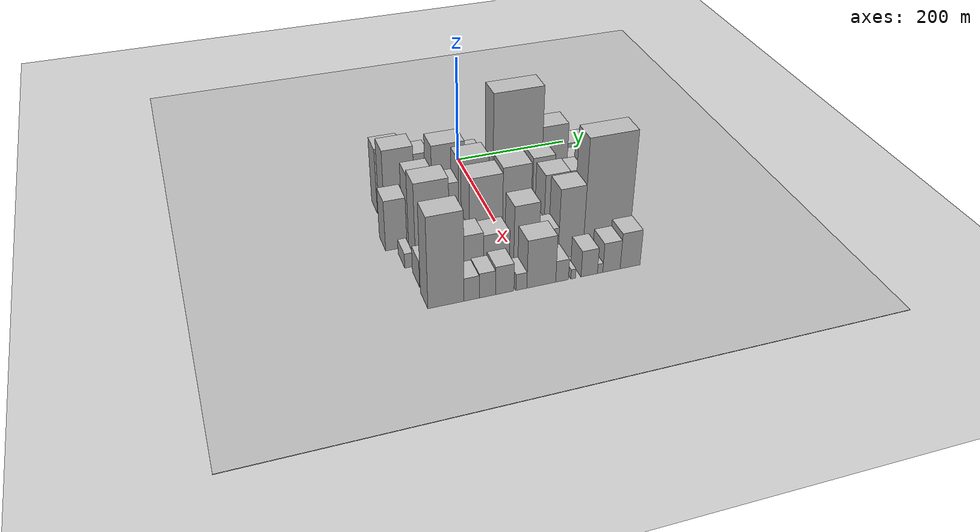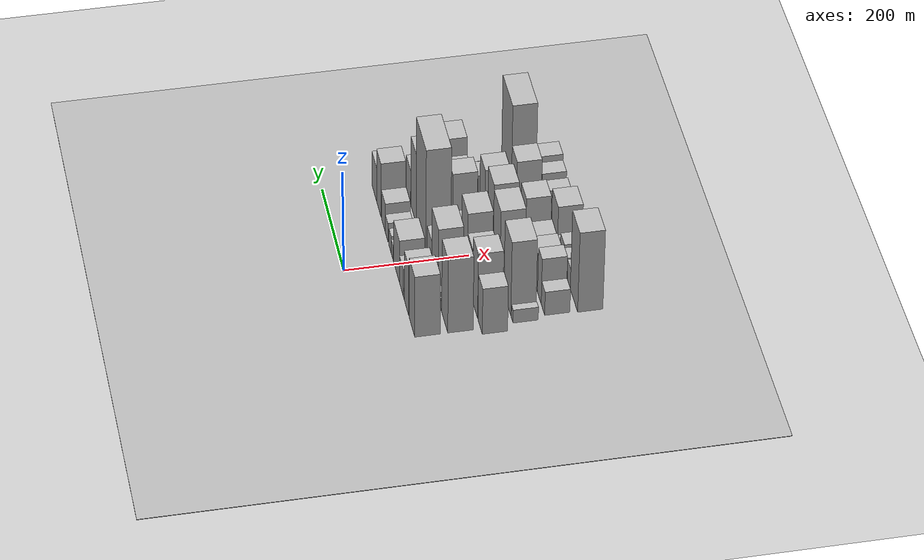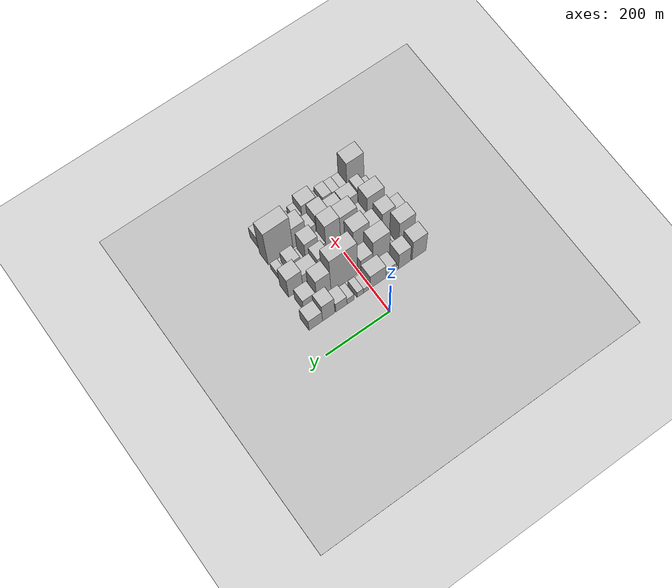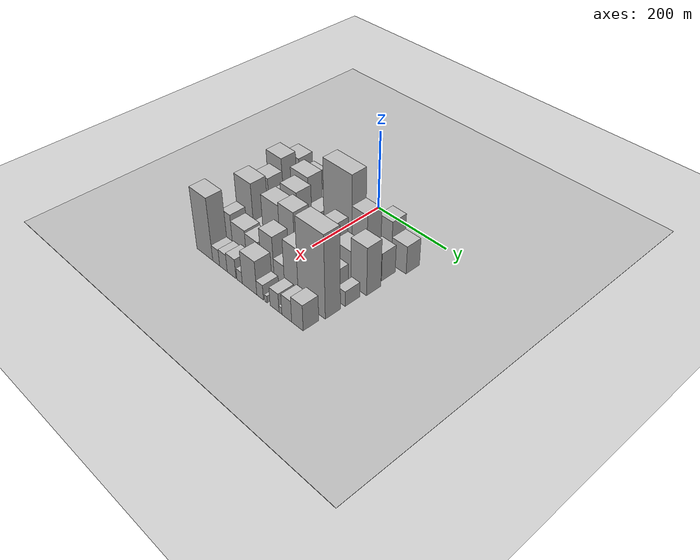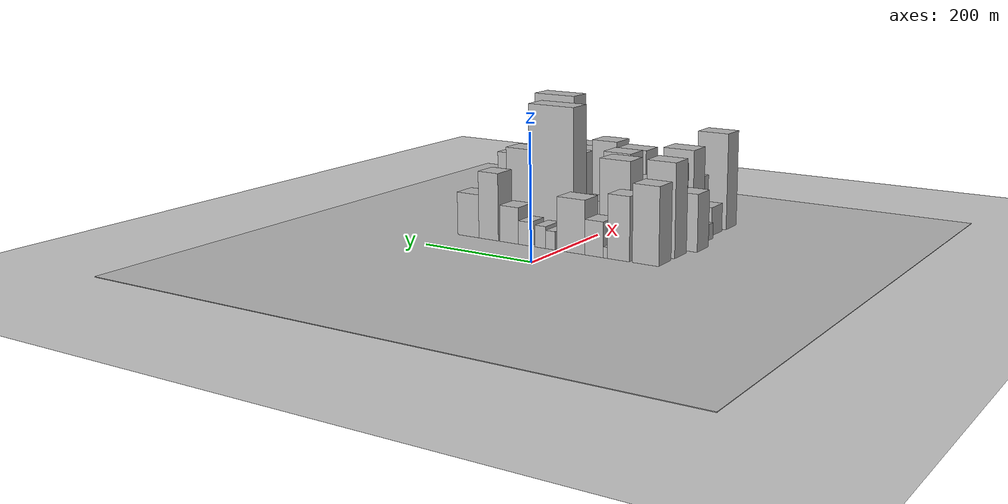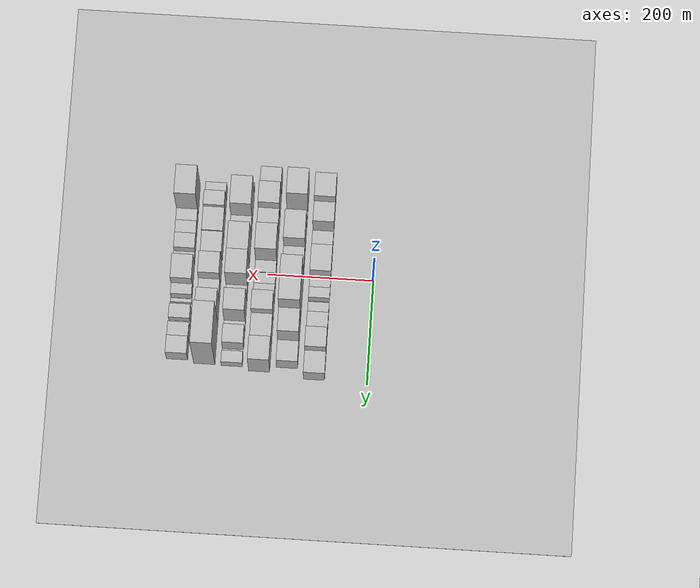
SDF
<sdf version="1.6">
 <world name="default">
  <include><name>ground_plane_1</name><uri>model://HANNAS_ground_plane</uri></include>
  <include>
   <name>ground_plane_2</name>
   <uri>model://HANNAS_ground_plane</uri>
   <pose>100 0 0  0 0 0</pose>
  </include>
  <model name="building_22">
   <static>1</static>
   <pose>100.0000 -152.9791 0 0.000000 0.000000 0.000000</pose>
   <link name="link">
    <pose>0 0 61.50 0 0 0</pose>
    <collision name="collision"><geometry><box><size>40.0000 45.4234 123.0000</size></box></geometry></collision>
    <visual name="visual">
     <cast_shadows>0</cast_shadows>
     <geometry><box><size>40.0000 45.4234 123.0000</size></box></geometry>
     <material>
      <script>
       <uri>model://HANNAS_wall/materials/scripts</uri>
       <uri>model://HANNAS_wall/materials/textures</uri>
       <name>vrc/HANNAS_wall</name>
      </script>
     </material>
    </visual>
   </link>
  </model>
  <model name="building_23">
   <static>1</static>
   <pose>100.0000 -106.0577 0 0.000000 0.000000 0.000000</pose>
   <link name="link">
    <pose>0 0 51.00 0 0 0</pose>
    <collision name="collision"><geometry><box><size>40.0000 38.4194 102.0000</size></box></geometry></collision>
    <visual name="visual">
     <cast_shadows>0</cast_shadows>
     <geometry><box><size>40.0000 38.4194 102.0000</size></box></geometry>
     <material>
      <script>
       <uri>model://HANNAS_wall/materials/scripts</uri>
       <uri>model://HANNAS_wall/materials/textures</uri>
       <name>vrc/HANNAS_wall</name>
      </script>
     </material>
    </visual>
   </link>
  </model>
  <model name="building_24">
   <static>1</static>
   <pose>100.0000 -83.0893 0 0.000000 0.000000 0.000000</pose>
   <link name="link">
    <pose>0 0 9.00 0 0 0</pose>
    <collision name="collision"><geometry><box><size>40.0000 7.5173 18.0000</size></box></geometry></collision>
    <visual name="visual">
     <cast_shadows>0</cast_shadows>
     <geometry><box><size>40.0000 7.5173 18.0000</size></box></geometry>
     <material>
      <script>
       <uri>model://HANNAS_wall/materials/scripts</uri>
       <uri>model://HANNAS_wall/materials/textures</uri>
       <name>vrc/HANNAS_wall</name>
      </script>
     </material>
    </visual>
   </link>
  </model>
  <model name="building_25">
   <static>1</static>
   <pose>100.0000 -62.7961 0 0.000000 0.000000 0.000000</pose>
   <link name="link">
    <pose>0 0 28.50 0 0 0</pose>
    <collision name="collision"><geometry><box><size>40.0000 33.0693 57.0000</size></box></geometry></collision>
    <visual name="visual">
     <cast_shadows>0</cast_shadows>
     <geometry><box><size>40.0000 33.0693 57.0000</size></box></geometry>
     <material>
      <script>
       <uri>model://HANNAS_wall/materials/scripts</uri>
       <uri>model://HANNAS_wall/materials/textures</uri>
       <name>vrc/HANNAS_wall</name>
      </script>
     </material>
    </visual>
   </link>
  </model>
  <model name="building_26">
   <static>1</static>
   <pose>100.0000 -21.0965 0 0.000000 0.000000 0.000000</pose>
   <link name="link">
    <pose>0 0 43.50 0 0 0</pose>
    <collision name="collision"><geometry><box><size>40.0000 50.3299 87.0000</size></box></geometry></collision>
    <visual name="visual">
     <cast_shadows>0</cast_shadows>
     <geometry><box><size>40.0000 50.3299 87.0000</size></box></geometry>
     <material>
      <script>
       <uri>model://HANNAS_wall/materials/scripts</uri>
       <uri>model://HANNAS_wall/materials/textures</uri>
       <name>vrc/HANNAS_wall</name>
      </script>
     </material>
    </visual>
   </link>
  </model>
  <model name="building_27">
   <static>1</static>
   <pose>100.0000 16.5725 0 0.000000 0.000000 0.000000</pose>
   <link name="link">
    <pose>0 0 15.00 0 0 0</pose>
    <collision name="collision"><geometry><box><size>40.0000 17.0081 30.0000</size></box></geometry></collision>
    <visual name="visual">
     <cast_shadows>0</cast_shadows>
     <geometry><box><size>40.0000 17.0081 30.0000</size></box></geometry>
     <material>
      <script>
       <uri>model://HANNAS_wall/materials/scripts</uri>
       <uri>model://HANNAS_wall/materials/textures</uri>
       <name>vrc/HANNAS_wall</name>
      </script>
     </material>
    </visual>
   </link>
  </model>
  <model name="building_28">
   <static>1</static>
   <pose>100.0000 35.2071 0 0.000000 0.000000 0.000000</pose>
   <link name="link">
    <pose>0 0 18.00 0 0 0</pose>
    <collision name="collision"><geometry><box><size>40.0000 20.2609 36.0000</size></box></geometry></collision>
    <visual name="visual">
     <cast_shadows>0</cast_shadows>
     <geometry><box><size>40.0000 20.2609 36.0000</size></box></geometry>
     <material>
      <script>
       <uri>model://HANNAS_wall/materials/scripts</uri>
       <uri>model://HANNAS_wall/materials/textures</uri>
       <name>vrc/HANNAS_wall</name>
      </script>
     </material>
    </visual>
   </link>
  </model>
  <model name="building_29">
   <static>1</static>
   <pose>100.0000 65.7200 0 0.000000 0.000000 0.000000</pose>
   <link name="link">
    <pose>0 0 19.50 0 0 0</pose>
    <collision name="collision"><geometry><box><size>40.0000 22.7649 39.0000</size></box></geometry></collision>
    <visual name="visual">
     <cast_shadows>0</cast_shadows>
     <geometry><box><size>40.0000 22.7649 39.0000</size></box></geometry>
     <material>
      <script>
       <uri>model://HANNAS_wall/materials/scripts</uri>
       <uri>model://HANNAS_wall/materials/textures</uri>
       <name>vrc/HANNAS_wall</name>
      </script>
     </material>
    </visual>
   </link>
  </model>
  <model name="building_30">
   <static>1</static>
   <pose>100.0000 94.8843 0 0.000000 0.000000 0.000000</pose>
   <link name="link">
    <pose>0 0 30.00 0 0 0</pose>
    <collision name="collision"><geometry><box><size>40.0000 35.5636 60.0000</size></box></geometry></collision>
    <visual name="visual">
     <cast_shadows>0</cast_shadows>
     <geometry><box><size>40.0000 35.5636 60.0000</size></box></geometry>
     <material>
      <script>
       <uri>model://HANNAS_wall/materials/scripts</uri>
       <uri>model://HANNAS_wall/materials/textures</uri>
       <name>vrc/HANNAS_wall</name>
      </script>
     </material>
    </visual>
   </link>
  </model>
  <model name="building_31">
   <static>1</static>
   <pose>100.0000 134.7887 0 0.000000 0.000000 0.000000</pose>
   <link name="link">
    <pose>0 0 55.50 0 0 0</pose>
    <collision name="collision"><geometry><box><size>40.0000 38.2454 111.0000</size></box></geometry></collision>
    <visual name="visual">
     <cast_shadows>0</cast_shadows>
     <geometry><box><size>40.0000 38.2454 111.0000</size></box></geometry>
     <material>
      <script>
       <uri>model://HANNAS_wall/materials/scripts</uri>
       <uri>model://HANNAS_wall/materials/textures</uri>
       <name>vrc/HANNAS_wall</name>
      </script>
     </material>
    </visual>
   </link>
  </model>
  <model name="building_32">
   <static>1</static>
   <pose>100.0000 175.0350 0 0.000000 0.000000 0.000000</pose>
   <link name="link">
    <pose>0 0 36.00 0 0 0</pose>
    <collision name="collision"><geometry><box><size>40.0000 42.2471 72.0000</size></box></geometry></collision>
    <visual name="visual">
     <cast_shadows>0</cast_shadows>
     <geometry><box><size>40.0000 42.2471 72.0000</size></box></geometry>
     <material>
      <script>
       <uri>model://HANNAS_wall/materials/scripts</uri>
       <uri>model://HANNAS_wall/materials/textures</uri>
       <name>vrc/HANNAS_wall</name>
      </script>
     </material>
    </visual>
   </link>
  </model>
  <model name="building_74">
   <static>1</static>
   <pose>152.0000 -150.5680 0 0.000000 0.000000 0.000000</pose>
   <link name="link">
    <pose>0 0 75.00 0 0 0</pose>
    <collision name="collision"><geometry><box><size>40.0000 49.9863 150.0000</size></box></geometry></collision>
    <visual name="visual">
     <cast_shadows>0</cast_shadows>
     <geometry><box><size>40.0000 49.9863 150.0000</size></box></geometry>
     <material>
      <script>
       <uri>model://HANNAS_wall/materials/scripts</uri>
       <uri>model://HANNAS_wall/materials/textures</uri>
       <name>vrc/HANNAS_wall</name>
      </script>
     </material>
    </visual>
   </link>
  </model>
  <model name="building_75">
   <static>1</static>
   <pose>152.0000 -117.7533 0 0.000000 0.000000 0.000000</pose>
   <link name="link">
    <pose>0 0 10.50 0 0 0</pose>
    <collision name="collision"><geometry><box><size>40.0000 9.6432 21.0000</size></box></geometry></collision>
    <visual name="visual">
     <cast_shadows>0</cast_shadows>
     <geometry><box><size>40.0000 9.6432 21.0000</size></box></geometry>
     <material>
      <script>
       <uri>model://HANNAS_wall/materials/scripts</uri>
       <uri>model://HANNAS_wall/materials/textures</uri>
       <name>vrc/HANNAS_wall</name>
      </script>
     </material>
    </visual>
   </link>
  </model>
  <model name="building_76">
   <static>1</static>
   <pose>152.0000 -104.8139 0 0.000000 0.000000 0.000000</pose>
   <link name="link">
    <pose>0 0 15.00 0 0 0</pose>
    <collision name="collision"><geometry><box><size>40.0000 16.2356 30.0000</size></box></geometry></collision>
    <visual name="visual">
     <cast_shadows>0</cast_shadows>
     <geometry><box><size>40.0000 16.2356 30.0000</size></box></geometry>
     <material>
      <script>
       <uri>model://HANNAS_wall/materials/scripts</uri>
       <uri>model://HANNAS_wall/materials/textures</uri>
       <name>vrc/HANNAS_wall</name>
      </script>
     </material>
    </visual>
   </link>
  </model>
  <model name="building_77">
   <static>1</static>
   <pose>152.0000 -69.3881 0 0.000000 0.000000 0.000000</pose>
   <link name="link">
    <pose>0 0 72.00 0 0 0</pose>
    <collision name="collision"><geometry><box><size>40.0000 54.6158 144.0000</size></box></geometry></collision>
    <visual name="visual">
     <cast_shadows>0</cast_shadows>
     <geometry><box><size>40.0000 54.6158 144.0000</size></box></geometry>
     <material>
      <script>
       <uri>model://HANNAS_wall/materials/scripts</uri>
       <uri>model://HANNAS_wall/materials/textures</uri>
       <name>vrc/HANNAS_wall</name>
      </script>
     </material>
    </visual>
   </link>
  </model>
  <model name="building_78">
   <static>1</static>
   <pose>152.0000 -22.9558 0 0.000000 0.000000 0.000000</pose>
   <link name="link">
    <pose>0 0 37.50 0 0 0</pose>
    <collision name="collision"><geometry><box><size>40.0000 38.2490 75.0000</size></box></geometry></collision>
    <visual name="visual">
     <cast_shadows>0</cast_shadows>
     <geometry><box><size>40.0000 38.2490 75.0000</size></box></geometry>
     <material>
      <script>
       <uri>model://HANNAS_wall/materials/scripts</uri>
       <uri>model://HANNAS_wall/materials/textures</uri>
       <name>vrc/HANNAS_wall</name>
      </script>
     </material>
    </visual>
   </link>
  </model>
  <model name="building_79">
   <static>1</static>
   <pose>152.0000 48.2133 0 0.000000 0.000000 0.000000</pose>
   <link name="link">
    <pose>0 0 109.50 0 0 0</pose>
    <collision name="collision"><geometry><box><size>40.0000 84.0893 219.0000</size></box></geometry></collision>
    <visual name="visual">
     <cast_shadows>0</cast_shadows>
     <geometry><box><size>40.0000 84.0893 219.0000</size></box></geometry>
     <material>
      <script>
       <uri>model://HANNAS_wall/materials/scripts</uri>
       <uri>model://HANNAS_wall/materials/textures</uri>
       <name>vrc/HANNAS_wall</name>
      </script>
     </material>
    </visual>
   </link>
  </model>
  <model name="building_80">
   <static>1</static>
   <pose>152.0000 112.3392 0 0.000000 0.000000 0.000000</pose>
   <link name="link">
    <pose>0 0 72.00 0 0 0</pose>
    <collision name="collision"><geometry><box><size>40.0000 44.1624 144.0000</size></box></geometry></collision>
    <visual name="visual">
     <cast_shadows>0</cast_shadows>
     <geometry><box><size>40.0000 44.1624 144.0000</size></box></geometry>
     <material>
      <script>
       <uri>model://HANNAS_wall/materials/scripts</uri>
       <uri>model://HANNAS_wall/materials/textures</uri>
       <name>vrc/HANNAS_wall</name>
      </script>
     </material>
    </visual>
   </link>
  </model>
  <model name="building_81">
   <static>1</static>
   <pose>152.0000 157.1368 0 0.000000 0.000000 0.000000</pose>
   <link name="link">
    <pose>0 0 36.00 0 0 0</pose>
    <collision name="collision"><geometry><box><size>40.0000 39.4327 72.0000</size></box></geometry></collision>
    <visual name="visual">
     <cast_shadows>0</cast_shadows>
     <geometry><box><size>40.0000 39.4327 72.0000</size></box></geometry>
     <material>
      <script>
       <uri>model://HANNAS_wall/materials/scripts</uri>
       <uri>model://HANNAS_wall/materials/textures</uri>
       <name>vrc/HANNAS_wall</name>
      </script>
     </material>
    </visual>
   </link>
  </model>
  <model name="building_123">
   <static>1</static>
   <pose>204.0000 -170.9260 0 0.000000 0.000000 0.000000</pose>
   <link name="link">
    <pose>0 0 46.50 0 0 0</pose>
    <collision name="collision"><geometry><box><size>40.0000 34.5743 93.0000</size></box></geometry></collision>
    <visual name="visual">
     <cast_shadows>0</cast_shadows>
     <geometry><box><size>40.0000 34.5743 93.0000</size></box></geometry>
     <material>
      <script>
       <uri>model://HANNAS_wall/materials/scripts</uri>
       <uri>model://HANNAS_wall/materials/textures</uri>
       <name>vrc/HANNAS_wall</name>
      </script>
     </material>
    </visual>
   </link>
  </model>
  <model name="building_124">
   <static>1</static>
   <pose>204.0000 -130.0839 0 0.000000 0.000000 0.000000</pose>
   <link name="link">
    <pose>0 0 66.00 0 0 0</pose>
    <collision name="collision"><geometry><box><size>40.0000 41.1101 132.0000</size></box></geometry></collision>
    <visual name="visual">
     <cast_shadows>0</cast_shadows>
     <geometry><box><size>40.0000 41.1101 132.0000</size></box></geometry>
     <material>
      <script>
       <uri>model://HANNAS_wall/materials/scripts</uri>
       <uri>model://HANNAS_wall/materials/textures</uri>
       <name>vrc/HANNAS_wall</name>
      </script>
     </material>
    </visual>
   </link>
  </model>
  <model name="building_125">
   <static>1</static>
   <pose>204.0000 -86.9033 0 0.000000 0.000000 0.000000</pose>
   <link name="link">
    <pose>0 0 52.50 0 0 0</pose>
    <collision name="collision"><geometry><box><size>40.0000 37.2510 105.0000</size></box></geometry></collision>
    <visual name="visual">
     <cast_shadows>0</cast_shadows>
     <geometry><box><size>40.0000 37.2510 105.0000</size></box></geometry>
     <material>
      <script>
       <uri>model://HANNAS_wall/materials/scripts</uri>
       <uri>model://HANNAS_wall/materials/textures</uri>
       <name>vrc/HANNAS_wall</name>
      </script>
     </material>
    </visual>
   </link>
  </model>
  <model name="building_126">
   <static>1</static>
   <pose>204.0000 -43.4100 0 0.000000 0.000000 0.000000</pose>
   <link name="link">
    <pose>0 0 72.00 0 0 0</pose>
    <collision name="collision"><geometry><box><size>40.0000 49.7355 144.0000</size></box></geometry></collision>
    <visual name="visual">
     <cast_shadows>0</cast_shadows>
     <geometry><box><size>40.0000 49.7355 144.0000</size></box></geometry>
     <material>
      <script>
       <uri>model://HANNAS_wall/materials/scripts</uri>
       <uri>model://HANNAS_wall/materials/textures</uri>
       <name>vrc/HANNAS_wall</name>
      </script>
     </material>
    </visual>
   </link>
  </model>
  <model name="building_127">
   <static>1</static>
   <pose>204.0000 -6.7733 0 0.000000 0.000000 0.000000</pose>
   <link name="link">
    <pose>0 0 22.50 0 0 0</pose>
    <collision name="collision"><geometry><box><size>40.0000 23.5378 45.0000</size></box></geometry></collision>
    <visual name="visual">
     <cast_shadows>0</cast_shadows>
     <geometry><box><size>40.0000 23.5378 45.0000</size></box></geometry>
     <material>
      <script>
       <uri>model://HANNAS_wall/materials/scripts</uri>
       <uri>model://HANNAS_wall/materials/textures</uri>
       <name>vrc/HANNAS_wall</name>
      </script>
     </material>
    </visual>
   </link>
  </model>
  <model name="building_128">
   <static>1</static>
   <pose>204.0000 16.0040 0 0.000000 0.000000 0.000000</pose>
   <link name="link">
    <pose>0 0 21.00 0 0 0</pose>
    <collision name="collision"><geometry><box><size>40.0000 22.0167 42.0000</size></box></geometry></collision>
    <visual name="visual">
     <cast_shadows>0</cast_shadows>
     <geometry><box><size>40.0000 22.0167 42.0000</size></box></geometry>
     <material>
      <script>
       <uri>model://HANNAS_wall/materials/scripts</uri>
       <uri>model://HANNAS_wall/materials/textures</uri>
       <name>vrc/HANNAS_wall</name>
      </script>
     </material>
    </visual>
   </link>
  </model>
  <model name="building_129">
   <static>1</static>
   <pose>204.0000 41.0035 0 0.000000 0.000000 0.000000</pose>
   <link name="link">
    <pose>0 0 24.00 0 0 0</pose>
    <collision name="collision"><geometry><box><size>40.0000 27.9822 48.0000</size></box></geometry></collision>
    <visual name="visual">
     <cast_shadows>0</cast_shadows>
     <geometry><box><size>40.0000 27.9822 48.0000</size></box></geometry>
     <material>
      <script>
       <uri>model://HANNAS_wall/materials/scripts</uri>
       <uri>model://HANNAS_wall/materials/textures</uri>
       <name>vrc/HANNAS_wall</name>
      </script>
     </material>
    </visual>
   </link>
  </model>
  <model name="building_130">
   <static>1</static>
   <pose>204.0000 73.4729 0 0.000000 0.000000 0.000000</pose>
   <link name="link">
    <pose>0 0 61.50 0 0 0</pose>
    <collision name="collision"><geometry><box><size>40.0000 36.9567 123.0000</size></box></geometry></collision>
    <visual name="visual">
     <cast_shadows>0</cast_shadows>
     <geometry><box><size>40.0000 36.9567 123.0000</size></box></geometry>
     <material>
      <script>
       <uri>model://HANNAS_wall/materials/scripts</uri>
       <uri>model://HANNAS_wall/materials/textures</uri>
       <name>vrc/HANNAS_wall</name>
      </script>
     </material>
    </visual>
   </link>
  </model>
  <model name="building_131">
   <static>1</static>
   <pose>204.0000 116.9390 0 0.000000 0.000000 0.000000</pose>
   <link name="link">
    <pose>0 0 43.50 0 0 0</pose>
    <collision name="collision"><geometry><box><size>40.0000 49.9755 87.0000</size></box></geometry></collision>
    <visual name="visual">
     <cast_shadows>0</cast_shadows>
     <geometry><box><size>40.0000 49.9755 87.0000</size></box></geometry>
     <material>
      <script>
       <uri>model://HANNAS_wall/materials/scripts</uri>
       <uri>model://HANNAS_wall/materials/textures</uri>
       <name>vrc/HANNAS_wall</name>
      </script>
     </material>
    </visual>
   </link>
  </model>
  <model name="building_132">
   <static>1</static>
   <pose>204.0000 164.4416 0 0.000000 0.000000 0.000000</pose>
   <link name="link">
    <pose>0 0 61.50 0 0 0</pose>
    <collision name="collision"><geometry><box><size>40.0000 45.0297 123.0000</size></box></geometry></collision>
    <visual name="visual">
     <cast_shadows>0</cast_shadows>
     <geometry><box><size>40.0000 45.0297 123.0000</size></box></geometry>
     <material>
      <script>
       <uri>model://HANNAS_wall/materials/scripts</uri>
       <uri>model://HANNAS_wall/materials/textures</uri>
       <name>vrc/HANNAS_wall</name>
      </script>
     </material>
    </visual>
   </link>
  </model>
  <model name="building_177">
   <static>1</static>
   <pose>256.0000 -164.6548 0 0.000000 0.000000 0.000000</pose>
   <link name="link">
    <pose>0 0 13.50 0 0 0</pose>
    <collision name="collision"><geometry><box><size>40.0000 13.2633 27.0000</size></box></geometry></collision>
    <visual name="visual">
     <cast_shadows>0</cast_shadows>
     <geometry><box><size>40.0000 13.2633 27.0000</size></box></geometry>
     <material>
      <script>
       <uri>model://HANNAS_wall/materials/scripts</uri>
       <uri>model://HANNAS_wall/materials/textures</uri>
       <name>vrc/HANNAS_wall</name>
      </script>
     </material>
    </visual>
   </link>
  </model>
  <model name="building_178">
   <static>1</static>
   <pose>256.0000 -126.9504 0 0.000000 0.000000 0.000000</pose>
   <link name="link">
    <pose>0 0 75.00 0 0 0</pose>
    <collision name="collision"><geometry><box><size>40.0000 54.1455 150.0000</size></box></geometry></collision>
    <visual name="visual">
     <cast_shadows>0</cast_shadows>
     <geometry><box><size>40.0000 54.1455 150.0000</size></box></geometry>
     <material>
      <script>
       <uri>model://HANNAS_wall/materials/scripts</uri>
       <uri>model://HANNAS_wall/materials/textures</uri>
       <name>vrc/HANNAS_wall</name>
      </script>
     </material>
    </visual>
   </link>
  </model>
  <model name="building_179">
   <static>1</static>
   <pose>256.0000 -83.9729 0 0.000000 0.000000 0.000000</pose>
   <link name="link">
    <pose>0 0 27.00 0 0 0</pose>
    <collision name="collision"><geometry><box><size>40.0000 31.8094 54.0000</size></box></geometry></collision>
    <visual name="visual">
     <cast_shadows>0</cast_shadows>
     <geometry><box><size>40.0000 31.8094 54.0000</size></box></geometry>
     <material>
      <script>
       <uri>model://HANNAS_wall/materials/scripts</uri>
       <uri>model://HANNAS_wall/materials/textures</uri>
       <name>vrc/HANNAS_wall</name>
      </script>
     </material>
    </visual>
   </link>
  </model>
  <model name="building_180">
   <static>1</static>
   <pose>256.0000 -41.0172 0 0.000000 0.000000 0.000000</pose>
   <link name="link">
    <pose>0 0 70.50 0 0 0</pose>
    <collision name="collision"><geometry><box><size>40.0000 54.1020 141.0000</size></box></geometry></collision>
    <visual name="visual">
     <cast_shadows>0</cast_shadows>
     <geometry><box><size>40.0000 54.1020 141.0000</size></box></geometry>
     <material>
      <script>
       <uri>model://HANNAS_wall/materials/scripts</uri>
       <uri>model://HANNAS_wall/materials/textures</uri>
       <name>vrc/HANNAS_wall</name>
      </script>
     </material>
    </visual>
   </link>
  </model>
  <model name="building_181">
   <static>1</static>
   <pose>256.0000 9.2032 0 0.000000 0.000000 0.000000</pose>
   <link name="link">
    <pose>0 0 75.00 0 0 0</pose>
    <collision name="collision"><geometry><box><size>40.0000 46.3390 150.0000</size></box></geometry></collision>
    <visual name="visual">
     <cast_shadows>0</cast_shadows>
     <geometry><box><size>40.0000 46.3390 150.0000</size></box></geometry>
     <material>
      <script>
       <uri>model://HANNAS_wall/materials/scripts</uri>
       <uri>model://HANNAS_wall/materials/textures</uri>
       <name>vrc/HANNAS_wall</name>
      </script>
     </material>
    </visual>
   </link>
  </model>
  <model name="building_182">
   <static>1</static>
   <pose>256.0000 43.7344 0 0.000000 0.000000 0.000000</pose>
   <link name="link">
    <pose>0 0 22.50 0 0 0</pose>
    <collision name="collision"><geometry><box><size>40.0000 22.7232 45.0000</size></box></geometry></collision>
    <visual name="visual">
     <cast_shadows>0</cast_shadows>
     <geometry><box><size>40.0000 22.7232 45.0000</size></box></geometry>
     <material>
      <script>
       <uri>model://HANNAS_wall/materials/scripts</uri>
       <uri>model://HANNAS_wall/materials/textures</uri>
       <name>vrc/HANNAS_wall</name>
      </script>
     </material>
    </visual>
   </link>
  </model>
  <model name="building_183">
   <static>1</static>
   <pose>256.0000 75.5555 0 0.000000 0.000000 0.000000</pose>
   <link name="link">
    <pose>0 0 61.50 0 0 0</pose>
    <collision name="collision"><geometry><box><size>40.0000 40.9190 123.0000</size></box></geometry></collision>
    <visual name="visual">
     <cast_shadows>0</cast_shadows>
     <geometry><box><size>40.0000 40.9190 123.0000</size></box></geometry>
     <material>
      <script>
       <uri>model://HANNAS_wall/materials/scripts</uri>
       <uri>model://HANNAS_wall/materials/textures</uri>
       <name>vrc/HANNAS_wall</name>
      </script>
     </material>
    </visual>
   </link>
  </model>
  <model name="building_184">
   <static>1</static>
   <pose>256.0000 100.3006 0 0.000000 0.000000 0.000000</pose>
   <link name="link">
    <pose>0 0 9.00 0 0 0</pose>
    <collision name="collision"><geometry><box><size>40.0000 8.5711 18.0000</size></box></geometry></collision>
    <visual name="visual">
     <cast_shadows>0</cast_shadows>
     <geometry><box><size>40.0000 8.5711 18.0000</size></box></geometry>
     <material>
      <script>
       <uri>model://HANNAS_wall/materials/scripts</uri>
       <uri>model://HANNAS_wall/materials/textures</uri>
       <name>vrc/HANNAS_wall</name>
      </script>
     </material>
    </visual>
   </link>
  </model>
  <model name="building_185">
   <static>1</static>
   <pose>256.0000 108.2056 0 0.000000 0.000000 0.000000</pose>
   <link name="link">
    <pose>0 0 7.50 0 0 0</pose>
    <collision name="collision"><geometry><box><size>40.0000 7.2390 15.0000</size></box></geometry></collision>
    <visual name="visual">
     <cast_shadows>0</cast_shadows>
     <geometry><box><size>40.0000 7.2390 15.0000</size></box></geometry>
     <material>
      <script>
       <uri>model://HANNAS_wall/materials/scripts</uri>
       <uri>model://HANNAS_wall/materials/textures</uri>
       <name>vrc/HANNAS_wall</name>
      </script>
     </material>
    </visual>
   </link>
  </model>
  <model name="building_186">
   <static>1</static>
   <pose>256.0000 129.5499 0 0.000000 0.000000 0.000000</pose>
   <link name="link">
    <pose>0 0 33.00 0 0 0</pose>
    <collision name="collision"><geometry><box><size>40.0000 35.4496 66.0000</size></box></geometry></collision>
    <visual name="visual">
     <cast_shadows>0</cast_shadows>
     <geometry><box><size>40.0000 35.4496 66.0000</size></box></geometry>
     <material>
      <script>
       <uri>model://HANNAS_wall/materials/scripts</uri>
       <uri>model://HANNAS_wall/materials/textures</uri>
       <name>vrc/HANNAS_wall</name>
      </script>
     </material>
    </visual>
   </link>
  </model>
  <model name="building_187">
   <static>1</static>
   <pose>256.0000 168.5702 0 0.000000 0.000000 0.000000</pose>
   <link name="link">
    <pose>0 0 19.50 0 0 0</pose>
    <collision name="collision"><geometry><box><size>40.0000 22.5908 39.0000</size></box></geometry></collision>
    <visual name="visual">
     <cast_shadows>0</cast_shadows>
     <geometry><box><size>40.0000 22.5908 39.0000</size></box></geometry>
     <material>
      <script>
       <uri>model://HANNAS_wall/materials/scripts</uri>
       <uri>model://HANNAS_wall/materials/textures</uri>
       <name>vrc/HANNAS_wall</name>
      </script>
     </material>
    </visual>
   </link>
  </model>
  <model name="building_225">
   <static>1</static>
   <pose>308.0000 -149.3691 0 0.000000 0.000000 0.000000</pose>
   <link name="link">
    <pose>0 0 24.00 0 0 0</pose>
    <collision name="collision"><geometry><box><size>40.0000 26.4114 48.0000</size></box></geometry></collision>
    <visual name="visual">
     <cast_shadows>0</cast_shadows>
     <geometry><box><size>40.0000 26.4114 48.0000</size></box></geometry>
     <material>
      <script>
       <uri>model://HANNAS_wall/materials/scripts</uri>
       <uri>model://HANNAS_wall/materials/textures</uri>
       <name>vrc/HANNAS_wall</name>
      </script>
     </material>
    </visual>
   </link>
  </model>
  <model name="building_226">
   <static>1</static>
   <pose>308.0000 -122.0363 0 0.000000 0.000000 0.000000</pose>
   <link name="link">
    <pose>0 0 46.50 0 0 0</pose>
    <collision name="collision"><geometry><box><size>40.0000 28.2542 93.0000</size></box></geometry></collision>
    <visual name="visual">
     <cast_shadows>0</cast_shadows>
     <geometry><box><size>40.0000 28.2542 93.0000</size></box></geometry>
     <material>
      <script>
       <uri>model://HANNAS_wall/materials/scripts</uri>
       <uri>model://HANNAS_wall/materials/textures</uri>
       <name>vrc/HANNAS_wall</name>
      </script>
     </material>
    </visual>
   </link>
  </model>
  <model name="building_227">
   <static>1</static>
   <pose>308.0000 -85.1522 0 0.000000 0.000000 0.000000</pose>
   <link name="link">
    <pose>0 0 39.00 0 0 0</pose>
    <collision name="collision"><geometry><box><size>40.0000 45.5142 78.0000</size></box></geometry></collision>
    <visual name="visual">
     <cast_shadows>0</cast_shadows>
     <geometry><box><size>40.0000 45.5142 78.0000</size></box></geometry>
     <material>
      <script>
       <uri>model://HANNAS_wall/materials/scripts</uri>
       <uri>model://HANNAS_wall/materials/textures</uri>
       <name>vrc/HANNAS_wall</name>
      </script>
     </material>
    </visual>
   </link>
  </model>
  <model name="building_228">
   <static>1</static>
   <pose>308.0000 -41.5799 0 0.000000 0.000000 0.000000</pose>
   <link name="link">
    <pose>0 0 36.00 0 0 0</pose>
    <collision name="collision"><geometry><box><size>40.0000 41.6302 72.0000</size></box></geometry></collision>
    <visual name="visual">
     <cast_shadows>0</cast_shadows>
     <geometry><box><size>40.0000 41.6302 72.0000</size></box></geometry>
     <material>
      <script>
       <uri>model://HANNAS_wall/materials/scripts</uri>
       <uri>model://HANNAS_wall/materials/textures</uri>
       <name>vrc/HANNAS_wall</name>
      </script>
     </material>
    </visual>
   </link>
  </model>
  <model name="building_229">
   <static>1</static>
   <pose>308.0000 6.5849 0 0.000000 0.000000 0.000000</pose>
   <link name="link">
    <pose>0 0 57.00 0 0 0</pose>
    <collision name="collision"><geometry><box><size>40.0000 40.6994 114.0000</size></box></geometry></collision>
    <visual name="visual">
     <cast_shadows>0</cast_shadows>
     <geometry><box><size>40.0000 40.6994 114.0000</size></box></geometry>
     <material>
      <script>
       <uri>model://HANNAS_wall/materials/scripts</uri>
       <uri>model://HANNAS_wall/materials/textures</uri>
       <name>vrc/HANNAS_wall</name>
      </script>
     </material>
    </visual>
   </link>
  </model>
  <model name="building_230">
   <static>1</static>
   <pose>308.0000 42.9440 0 0.000000 0.000000 0.000000</pose>
   <link name="link">
    <pose>0 0 30.00 0 0 0</pose>
    <collision name="collision"><geometry><box><size>40.0000 32.0188 60.0000</size></box></geometry></collision>
    <visual name="visual">
     <cast_shadows>0</cast_shadows>
     <geometry><box><size>40.0000 32.0188 60.0000</size></box></geometry>
     <material>
      <script>
       <uri>model://HANNAS_wall/materials/scripts</uri>
       <uri>model://HANNAS_wall/materials/textures</uri>
       <name>vrc/HANNAS_wall</name>
      </script>
     </material>
    </visual>
   </link>
  </model>
  <model name="building_231">
   <static>1</static>
   <pose>308.0000 79.7183 0 0.000000 0.000000 0.000000</pose>
   <link name="link">
    <pose>0 0 64.50 0 0 0</pose>
    <collision name="collision"><geometry><box><size>40.0000 41.5298 129.0000</size></box></geometry></collision>
    <visual name="visual">
     <cast_shadows>0</cast_shadows>
     <geometry><box><size>40.0000 41.5298 129.0000</size></box></geometry>
     <material>
      <script>
       <uri>model://HANNAS_wall/materials/scripts</uri>
       <uri>model://HANNAS_wall/materials/textures</uri>
       <name>vrc/HANNAS_wall</name>
      </script>
     </material>
    </visual>
   </link>
  </model>
  <model name="building_232">
   <static>1</static>
   <pose>308.0000 139.7599 0 0.000000 0.000000 0.000000</pose>
   <link name="link">
    <pose>0 0 105.00 0 0 0</pose>
    <collision name="collision"><geometry><box><size>40.0000 78.5535 210.0000</size></box></geometry></collision>
    <visual name="visual">
     <cast_shadows>0</cast_shadows>
     <geometry><box><size>40.0000 78.5535 210.0000</size></box></geometry>
     <material>
      <script>
       <uri>model://HANNAS_wall/materials/scripts</uri>
       <uri>model://HANNAS_wall/materials/textures</uri>
       <name>vrc/HANNAS_wall</name>
      </script>
     </material>
    </visual>
   </link>
  </model>
  <model name="building_273">
   <static>1</static>
   <pose>360.0000 -137.1475 0 0.000000 0.000000 0.000000</pose>
   <link name="link">
    <pose>0 0 81.00 0 0 0</pose>
    <collision name="collision"><geometry><box><size>40.0000 55.1024 162.0000</size></box></geometry></collision>
    <visual name="visual">
     <cast_shadows>0</cast_shadows>
     <geometry><box><size>40.0000 55.1024 162.0000</size></box></geometry>
     <material>
      <script>
       <uri>model://HANNAS_wall/materials/scripts</uri>
       <uri>model://HANNAS_wall/materials/textures</uri>
       <name>vrc/HANNAS_wall</name>
      </script>
     </material>
    </visual>
   </link>
  </model>
  <model name="building_274">
   <static>1</static>
   <pose>360.0000 -97.8865 0 0.000000 0.000000 0.000000</pose>
   <link name="link">
    <pose>0 0 21.00 0 0 0</pose>
    <collision name="collision"><geometry><box><size>40.0000 23.4195 42.0000</size></box></geometry></collision>
    <visual name="visual">
     <cast_shadows>0</cast_shadows>
     <geometry><box><size>40.0000 23.4195 42.0000</size></box></geometry>
     <material>
      <script>
       <uri>model://HANNAS_wall/materials/scripts</uri>
       <uri>model://HANNAS_wall/materials/textures</uri>
       <name>vrc/HANNAS_wall</name>
      </script>
     </material>
    </visual>
   </link>
  </model>
  <model name="building_275">
   <static>1</static>
   <pose>360.0000 -73.5380 0 0.000000 0.000000 0.000000</pose>
   <link name="link">
    <pose>0 0 22.50 0 0 0</pose>
    <collision name="collision"><geometry><box><size>40.0000 25.2775 45.0000</size></box></geometry></collision>
    <visual name="visual">
     <cast_shadows>0</cast_shadows>
     <geometry><box><size>40.0000 25.2775 45.0000</size></box></geometry>
     <material>
      <script>
       <uri>model://HANNAS_wall/materials/scripts</uri>
       <uri>model://HANNAS_wall/materials/textures</uri>
       <name>vrc/HANNAS_wall</name>
      </script>
     </material>
    </visual>
   </link>
  </model>
  <model name="building_276">
   <static>1</static>
   <pose>360.0000 -46.3785 0 0.000000 0.000000 0.000000</pose>
   <link name="link">
    <pose>0 0 25.50 0 0 0</pose>
    <collision name="collision"><geometry><box><size>40.0000 29.0413 51.0000</size></box></geometry></collision>
    <visual name="visual">
     <cast_shadows>0</cast_shadows>
     <geometry><box><size>40.0000 29.0413 51.0000</size></box></geometry>
     <material>
      <script>
       <uri>model://HANNAS_wall/materials/scripts</uri>
       <uri>model://HANNAS_wall/materials/textures</uri>
       <name>vrc/HANNAS_wall</name>
      </script>
     </material>
    </visual>
   </link>
  </model>
  <model name="building_277">
   <static>1</static>
   <pose>360.0000 -20.1971 0 0.000000 0.000000 0.000000</pose>
   <link name="link">
    <pose>0 0 15.00 0 0 0</pose>
    <collision name="collision"><geometry><box><size>40.0000 17.3215 30.0000</size></box></geometry></collision>
    <visual name="visual">
     <cast_shadows>0</cast_shadows>
     <geometry><box><size>40.0000 17.3215 30.0000</size></box></geometry>
     <material>
      <script>
       <uri>model://HANNAS_wall/materials/scripts</uri>
       <uri>model://HANNAS_wall/materials/textures</uri>
       <name>vrc/HANNAS_wall</name>
      </script>
     </material>
    </visual>
   </link>
  </model>
  <model name="building_278">
   <static>1</static>
   <pose>360.0000 11.5676 0 0.000000 0.000000 0.000000</pose>
   <link name="link">
    <pose>0 0 43.50 0 0 0</pose>
    <collision name="collision"><geometry><box><size>40.0000 46.2079 87.0000</size></box></geometry></collision>
    <visual name="visual">
     <cast_shadows>0</cast_shadows>
     <geometry><box><size>40.0000 46.2079 87.0000</size></box></geometry>
     <material>
      <script>
       <uri>model://HANNAS_wall/materials/scripts</uri>
       <uri>model://HANNAS_wall/materials/textures</uri>
       <name>vrc/HANNAS_wall</name>
      </script>
     </material>
    </visual>
   </link>
  </model>
  <model name="building_279">
   <static>1</static>
   <pose>360.0000 44.9475 0 0.000000 0.000000 0.000000</pose>
   <link name="link">
    <pose>0 0 19.50 0 0 0</pose>
    <collision name="collision"><geometry><box><size>40.0000 20.5521 39.0000</size></box></geometry></collision>
    <visual name="visual">
     <cast_shadows>0</cast_shadows>
     <geometry><box><size>40.0000 20.5521 39.0000</size></box></geometry>
     <material>
      <script>
       <uri>model://HANNAS_wall/materials/scripts</uri>
       <uri>model://HANNAS_wall/materials/textures</uri>
       <name>vrc/HANNAS_wall</name>
      </script>
     </material>
    </visual>
   </link>
  </model>
  <model name="building_280">
   <static>1</static>
   <pose>360.0000 62.9722 0 0.000000 0.000000 0.000000</pose>
   <link name="link">
    <pose>0 0 9.00 0 0 0</pose>
    <collision name="collision"><geometry><box><size>40.0000 7.4972 18.0000</size></box></geometry></collision>
    <visual name="visual">
     <cast_shadows>0</cast_shadows>
     <geometry><box><size>40.0000 7.4972 18.0000</size></box></geometry>
     <material>
      <script>
       <uri>model://HANNAS_wall/materials/scripts</uri>
       <uri>model://HANNAS_wall/materials/textures</uri>
       <name>vrc/HANNAS_wall</name>
      </script>
     </material>
    </visual>
   </link>
  </model>
  <model name="building_281">
   <static>1</static>
   <pose>360.0000 89.1774 0 0.000000 0.000000 0.000000</pose>
   <link name="link">
    <pose>0 0 24.00 0 0 0</pose>
    <collision name="collision"><geometry><box><size>40.0000 26.9132 48.0000</size></box></geometry></collision>
    <visual name="visual">
     <cast_shadows>0</cast_shadows>
     <geometry><box><size>40.0000 26.9132 48.0000</size></box></geometry>
     <material>
      <script>
       <uri>model://HANNAS_wall/materials/scripts</uri>
       <uri>model://HANNAS_wall/materials/textures</uri>
       <name>vrc/HANNAS_wall</name>
      </script>
     </material>
    </visual>
   </link>
  </model>
  <model name="building_282">
   <static>1</static>
   <pose>360.0000 107.0246 0 0.000000 0.000000 0.000000</pose>
   <link name="link">
    <pose>0 0 9.00 0 0 0</pose>
    <collision name="collision"><geometry><box><size>40.0000 8.7812 18.0000</size></box></geometry></collision>
    <visual name="visual">
     <cast_shadows>0</cast_shadows>
     <geometry><box><size>40.0000 8.7812 18.0000</size></box></geometry>
     <material>
      <script>
       <uri>model://HANNAS_wall/materials/scripts</uri>
       <uri>model://HANNAS_wall/materials/textures</uri>
       <name>vrc/HANNAS_wall</name>
      </script>
     </material>
    </visual>
   </link>
  </model>
  <model name="building_283">
   <static>1</static>
   <pose>360.0000 125.7996 0 0.000000 0.000000 0.000000</pose>
   <link name="link">
    <pose>0 0 27.00 0 0 0</pose>
    <collision name="collision"><geometry><box><size>40.0000 28.7687 54.0000</size></box></geometry></collision>
    <visual name="visual">
     <cast_shadows>0</cast_shadows>
     <geometry><box><size>40.0000 28.7687 54.0000</size></box></geometry>
     <material>
      <script>
       <uri>model://HANNAS_wall/materials/scripts</uri>
       <uri>model://HANNAS_wall/materials/textures</uri>
       <name>vrc/HANNAS_wall</name>
      </script>
     </material>
    </visual>
   </link>
  </model>
  <model name="building_284">
   <static>1</static>
   <pose>360.0000 156.7975 0 0.000000 0.000000 0.000000</pose>
   <link name="link">
    <pose>0 0 33.00 0 0 0</pose>
    <collision name="collision"><geometry><box><size>40.0000 33.2272 66.0000</size></box></geometry></collision>
    <visual name="visual">
     <cast_shadows>0</cast_shadows>
     <geometry><box><size>40.0000 33.2272 66.0000</size></box></geometry>
     <material>
      <script>
       <uri>model://HANNAS_wall/materials/scripts</uri>
       <uri>model://HANNAS_wall/materials/textures</uri>
       <name>vrc/HANNAS_wall</name>
      </script>
     </material>
    </visual>
   </link>
  </model>
 </world>
</sdf>
